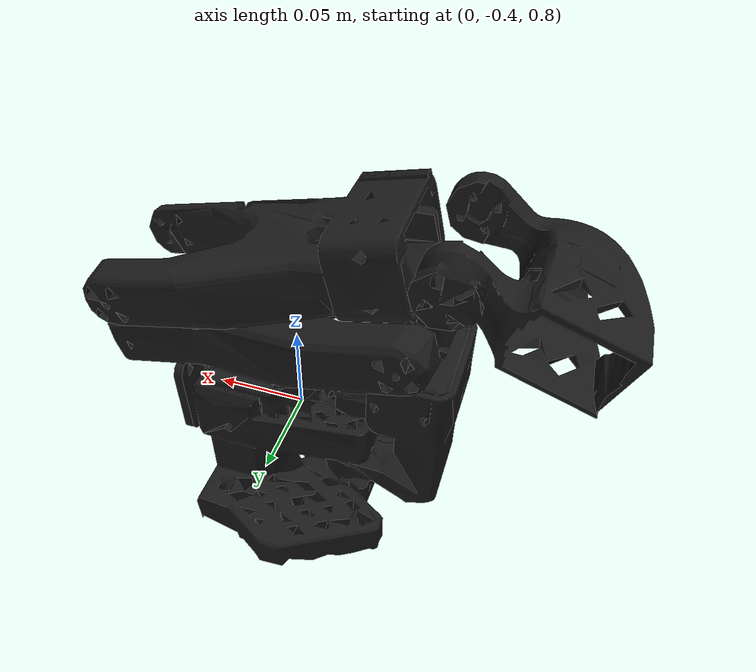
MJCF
<mujoco model="so_arm100">
  <compiler angle="radian"/>
  <default>
    <default class="so100_servo">
      <joint damping="0.60" frictionloss="0.052" armature="0.028"/>
      <position kp="300" kv="2.0" forcerange="-3.35 3.35"/>
    </default>
  </default>
  <asset>
    <mesh name="Base" file="assets/Base.stl"/>
    <mesh name="Rotation_Pitch" file="assets/Rotation_Pitch.stl"/>
    <mesh name="Upper_Arm" file="assets/Upper_Arm.stl"/>
    <mesh name="Lower_Arm" file="assets/Lower_Arm.stl"/>
    <mesh name="Wrist_Pitch_Roll" file="assets/Wrist_Pitch_Roll.stl"/>
  </asset>
  <worldbody>
    <body name="base" pos="0.00 -0.35 0.805" quat="0.707107 0 0 -0.707107">
      <geom type="mesh" rgba="0.1 0.1 0.1 1" mesh="Base"/>
      <body name="shoulder" pos="0 -0.0452 0.0165" quat="0.707109 0.707105 0 0">
      <inertial pos="-9.07886e-05 0.0590972 0.031089" mass="0.119226" diaginertia="5.94278e-05 5.89975e-05 3.13712e-05"/>
      <joint name="shoulder_pan" pos="0 0 0" axis="0 1 0" range="-2 2" actuatorfrcrange="-35 35"/>
      <geom type="mesh" rgba="0.1 0.1 0.1 1" mesh="Rotation_Pitch"/>
      <body name="upper_arm" pos="0 0.1025 0.0306" quat="0.62161 -0.783327 0 0">
        <inertial pos="-1.72052e-05 0.0701802 0.00310545" mass="0.162409" diaginertia="0.000213312 0.000167164 7.01522e-05"/>
        <joint name="shoulder_lift" pos="0 0 0" axis="1 0 0" range="0 3.5" actuatorfrcrange="-35 35"/>
        <geom type="mesh" rgba="0.1 0.1 0.1 1" mesh="Upper_Arm"/>
        <body name="lower_arm" pos="0 0.11257 0.028" quat="0.707109 0.707105 0 0">
          <inertial pos="-0.00339604 0.00137796 0.0768007" mass="0.147968" diaginertia="0.000138803 0.000107748 4.84242e-05"/>
          <joint name="elbow_flex" pos="0 0 0" axis="1 0 0" range="-3.14158 0" actuatorfrcrange="-35 35"/>
          <geom type="mesh" rgba="0.1 0.1 0.1 1" mesh="Lower_Arm"/>
          <body name="wrist" pos="0 0.0052 0.1349" quat="0.877583 -0.479426 0 0">
            <inertial pos="-0.00852653 -0.0352279 -2.34622e-05" mass="0.0661321" diaginertia="3.45403e-05 2.39041e-05 1.94704e-05"/>
            <joint name="wrist_flex" pos="0 0 0" axis="1 0 0" range="-2.5 1.2" actuatorfrcrange="-35 35"/>
            <geom type="mesh" rgba="0.1 0.1 0.1 1" mesh="Wrist_Pitch_Roll"/>
            <body name="gripper" pos="0 -0.0601 0" quat="0.707109 0 0.707105 0">
              <inertial pos="0.00552377 -0.0280167 0.000483583" mass="0.0929859" diaginertia="5.03136e-05 4.64098e-05 2.72961e-05"/>
              <joint name="wrist_roll" pos="0 0 0" axis="0 1 0" range="-3.14158 3.14158" actuatorfrcrange="-35 35"/>
              <body name="camera_center" pos="0.0 -0.03 0.08">
                <camera name="egocentric" pos="0 0 0" xyaxes="-1 0 0 0 0 1" fovy="90"/>
              </body>
              <body name="jaw" pos="-0.0202 -0.0244 0" quat="6.32679e-06 0 1 0">
                <inertial pos="-0.00161745 -0.0303473 0.000449646" mass="0.0202444" diaginertia="1.11265e-05 8.99651e-06 2.99548e-06"/>
                <joint name="gripper" pos="0 0 0" axis="0 0 1" range="-0.2 2" actuatorfrcrange="-35 35"/>
              </body>
            </body>
          </body>
        </body>
      </body>
      </body>
    </body>
  </worldbody>
  <actuator>
    <position class="so100_servo" name="shoulder_pan" joint="shoulder_pan" ctrlrange="-2 2"/>
    <position class="so100_servo" name="shoulder_lift" joint="shoulder_lift" ctrlrange="0 3.5"/>
    <position class="so100_servo" name="elbow_flex" joint="elbow_flex" ctrlrange="-3.14158 0"/>
    <position class="so100_servo" name="wrist_flex" joint="wrist_flex" ctrlrange="-2.5 1.2"/>
    <position class="so100_servo" name="wrist_roll" joint="wrist_roll" ctrlrange="-3.14158 3.14158"/>
    <position class="so100_servo" name="gripper" joint="gripper" ctrlrange="-0.2 2"/>
  </actuator>
</mujoco>
